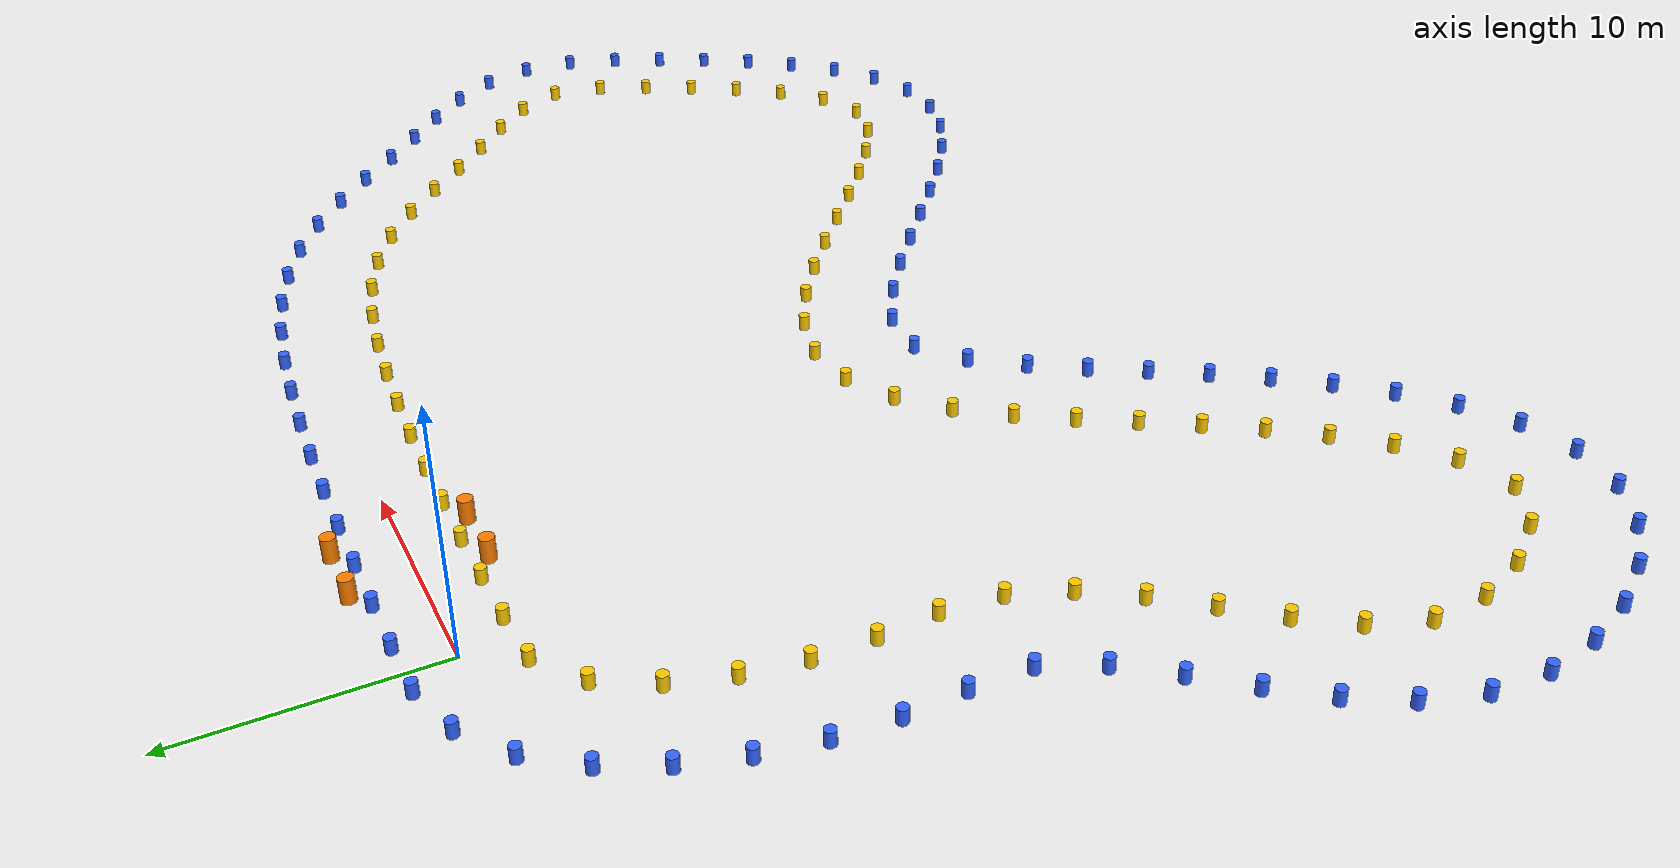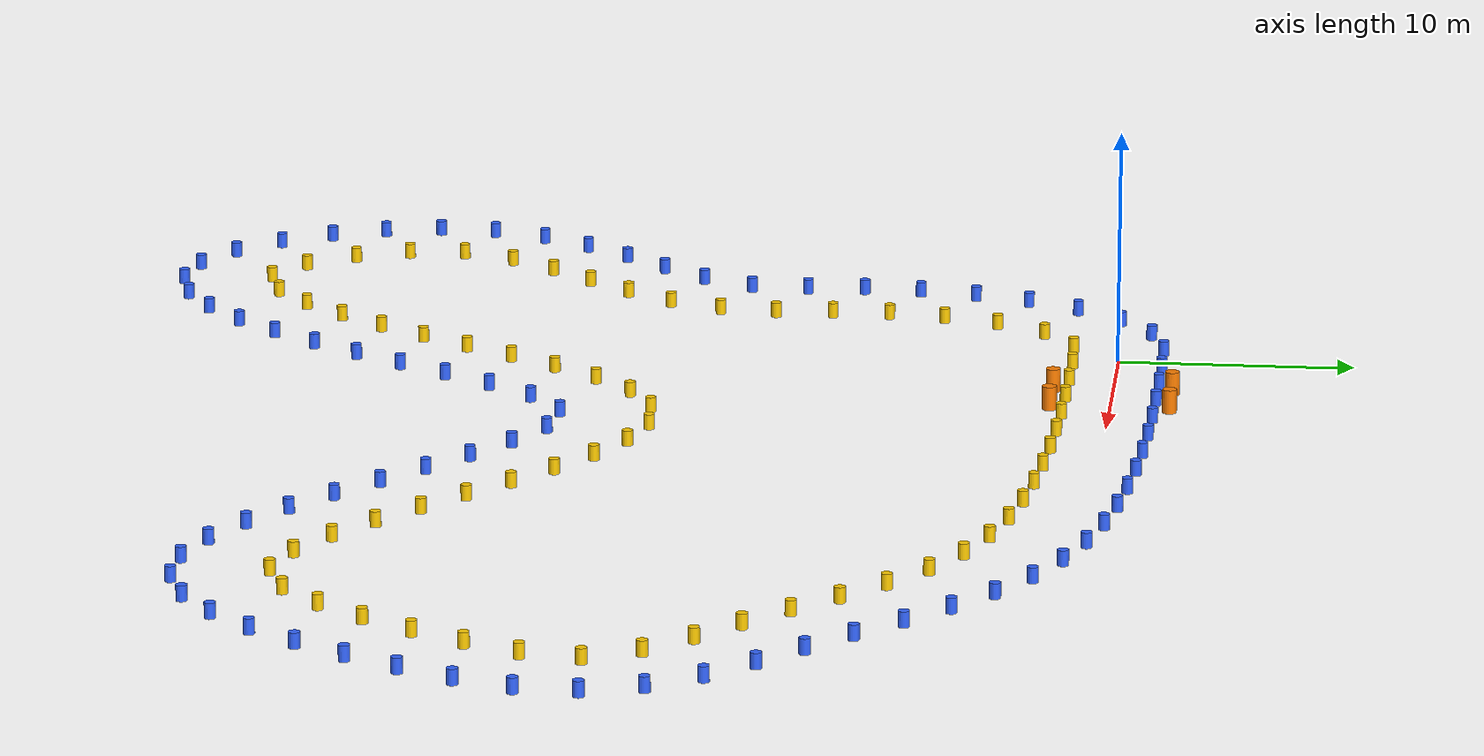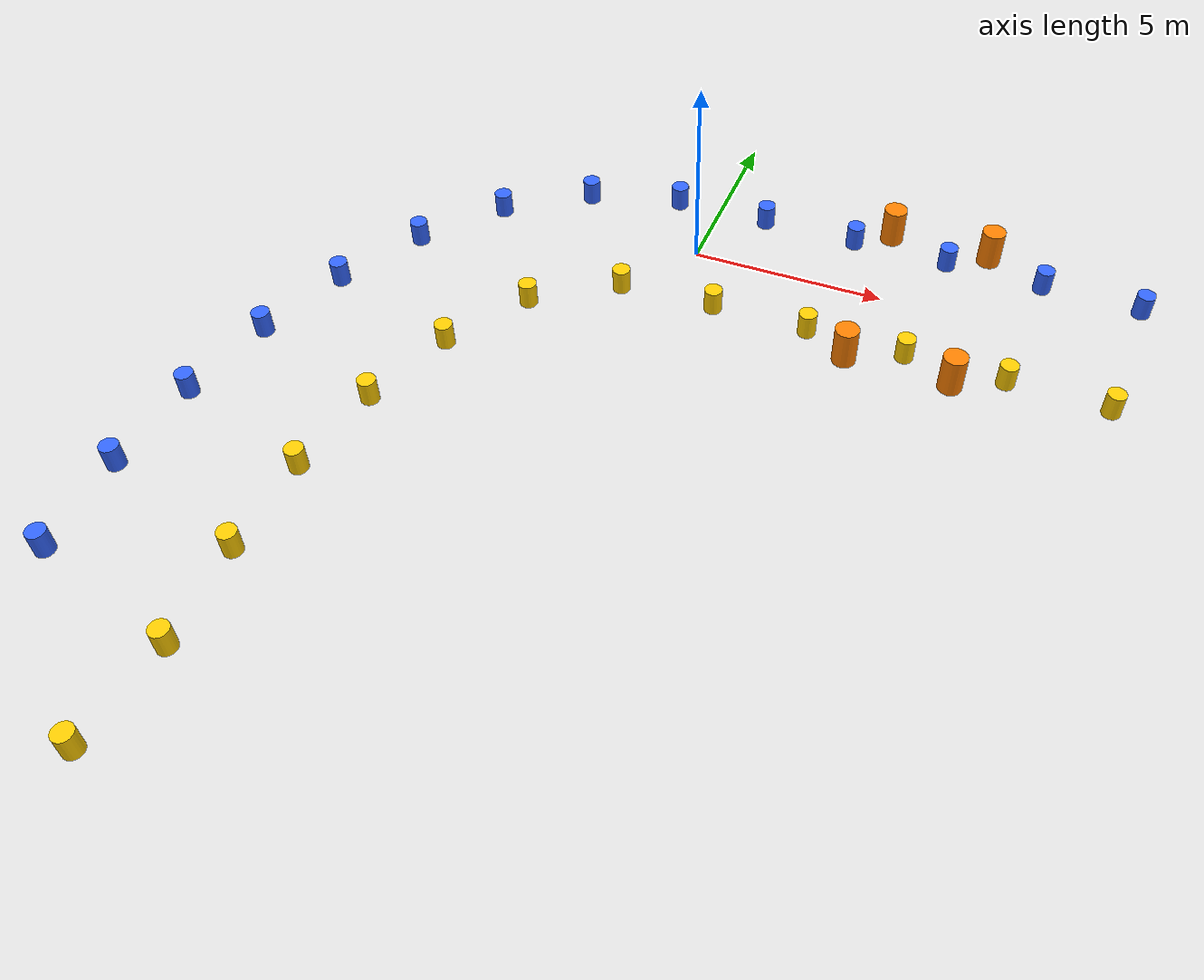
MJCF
<?xml version="1.0" ?>
<mujoco model="random_track">
  <compiler angle="radian" coordinate="local" autolimits="true"/>
  <default>
    <default class="cone">
      <joint type="free" damping="0.1" frictionloss="0.05"/>
      <geom condim="4" friction="0.5 0.005 0.0001" solref="0.02 1.0" solimp="0.99 0.99 0.001"/>
    </default>
  </default>
  <asset>
    <material name="blue_cone" rgba="0.2 0.4 1.0 1.0" specular="0.5" shininess="0.2"/>
    <material name="yellow_cone" rgba="1.0 0.8 0.0 1.0" specular="0.5" shininess="0.2"/>
    <material name="orange_cone" rgba="1.0 0.5 0.0 1.0" specular="0.5" shininess="0.2"/>
  </asset>
  <worldbody>
    <body name="cone_left_0000" pos="18.735603898344248 1.3534401294059109 0.325">
      <joint name="cone_left_joint_0000" type="free" damping="0.1" frictionloss="0.05"/>
      <geom name="cone_left_vis_0000" type="cylinder" size="0.228 0.325" material="blue_cone" mass="1.0" density="100" condim="4" friction="0.5 0.005 0.0001" solref="0.02 1.0" solimp="0.99 0.99 0.001"/>
    </body>
    <body name="cone_left_0001" pos="21.20881553278776 1.075751233805832 0.325">
      <joint name="cone_left_joint_0001" type="free" damping="0.1" frictionloss="0.05"/>
      <geom name="cone_left_vis_0001" type="cylinder" size="0.228 0.325" material="blue_cone" mass="1.0" density="100" condim="4" friction="0.5 0.005 0.0001" solref="0.02 1.0" solimp="0.99 0.99 0.001"/>
    </body>
    <body name="cone_left_0002" pos="23.66638857630077 0.6832571295681049 0.325">
      <joint name="cone_left_joint_0002" type="free" damping="0.1" frictionloss="0.05"/>
      <geom name="cone_left_vis_0002" type="cylinder" size="0.228 0.325" material="blue_cone" mass="1.0" density="100" condim="4" friction="0.5 0.005 0.0001" solref="0.02 1.0" solimp="0.99 0.99 0.001"/>
    </body>
    <body name="cone_left_0003" pos="26.091472914993638 0.12546506664108392 0.325">
      <joint name="cone_left_joint_0003" type="free" damping="0.1" frictionloss="0.05"/>
      <geom name="cone_left_vis_0003" type="cylinder" size="0.228 0.325" material="blue_cone" mass="1.0" density="100" condim="4" friction="0.5 0.005 0.0001" solref="0.02 1.0" solimp="0.99 0.99 0.001"/>
    </body>
    <body name="cone_left_0004" pos="28.45613990898478 -0.6480907303542125 0.325">
      <joint name="cone_left_joint_0004" type="free" damping="0.1" frictionloss="0.05"/>
      <geom name="cone_left_vis_0004" type="cylinder" size="0.228 0.325" material="blue_cone" mass="1.0" density="100" condim="4" friction="0.5 0.005 0.0001" solref="0.02 1.0" solimp="0.99 0.99 0.001"/>
    </body>
    <body name="cone_left_0005" pos="30.71805762903768 -1.683067530949259 0.325">
      <joint name="cone_left_joint_0005" type="free" damping="0.1" frictionloss="0.05"/>
      <geom name="cone_left_vis_0005" type="cylinder" size="0.228 0.325" material="blue_cone" mass="1.0" density="100" condim="4" friction="0.5 0.005 0.0001" solref="0.02 1.0" solimp="0.99 0.99 0.001"/>
    </body>
    <body name="cone_left_0006" pos="32.82934699698564 -2.9983166853792653 0.325">
      <joint name="cone_left_joint_0006" type="free" damping="0.1" frictionloss="0.05"/>
      <geom name="cone_left_vis_0006" type="cylinder" size="0.228 0.325" material="blue_cone" mass="1.0" density="100" condim="4" friction="0.5 0.005 0.0001" solref="0.02 1.0" solimp="0.99 0.99 0.001"/>
    </body>
    <body name="cone_left_0007" pos="34.788584654144195 -4.532110984993523 0.325">
      <joint name="cone_left_joint_0007" type="free" damping="0.1" frictionloss="0.05"/>
      <geom name="cone_left_vis_0007" type="cylinder" size="0.228 0.325" material="blue_cone" mass="1.0" density="100" condim="4" friction="0.5 0.005 0.0001" solref="0.02 1.0" solimp="0.99 0.99 0.001"/>
    </body>
    <body name="cone_left_0008" pos="36.6285604219892 -6.2078520269610635 0.325">
      <joint name="cone_left_joint_0008" type="free" damping="0.1" frictionloss="0.05"/>
      <geom name="cone_left_vis_0008" type="cylinder" size="0.228 0.325" material="blue_cone" mass="1.0" density="100" condim="4" friction="0.5 0.005 0.0001" solref="0.02 1.0" solimp="0.99 0.99 0.001"/>
    </body>
    <body name="cone_left_0009" pos="38.40050200234917 -7.955830560616121 0.325">
      <joint name="cone_left_joint_0009" type="free" damping="0.1" frictionloss="0.05"/>
      <geom name="cone_left_vis_0009" type="cylinder" size="0.228 0.325" material="blue_cone" mass="1.0" density="100" condim="4" friction="0.5 0.005 0.0001" solref="0.02 1.0" solimp="0.99 0.99 0.001"/>
    </body>
    <body name="cone_left_0010" pos="40.23340110209543 -9.639229165532711 0.325">
      <joint name="cone_left_joint_0010" type="free" damping="0.1" frictionloss="0.05"/>
      <geom name="cone_left_vis_0010" type="cylinder" size="0.228 0.325" material="blue_cone" mass="1.0" density="100" condim="4" friction="0.5 0.005 0.0001" solref="0.02 1.0" solimp="0.99 0.99 0.001"/>
    </body>
    <body name="cone_left_0011" pos="42.09156334778955 -11.295158669617805 0.325">
      <joint name="cone_left_joint_0011" type="free" damping="0.1" frictionloss="0.05"/>
      <geom name="cone_left_vis_0011" type="cylinder" size="0.228 0.325" material="blue_cone" mass="1.0" density="100" condim="4" friction="0.5 0.005 0.0001" solref="0.02 1.0" solimp="0.99 0.99 0.001"/>
    </body>
    <body name="cone_left_0012" pos="43.825645655811094 -13.078805977486354 0.325">
      <joint name="cone_left_joint_0012" type="free" damping="0.1" frictionloss="0.05"/>
      <geom name="cone_left_vis_0012" type="cylinder" size="0.228 0.325" material="blue_cone" mass="1.0" density="100" condim="4" friction="0.5 0.005 0.0001" solref="0.02 1.0" solimp="0.99 0.99 0.001"/>
    </body>
    <body name="cone_left_0013" pos="45.23056420997621 -15.12677592381479 0.325">
      <joint name="cone_left_joint_0013" type="free" damping="0.1" frictionloss="0.05"/>
      <geom name="cone_left_vis_0013" type="cylinder" size="0.228 0.325" material="blue_cone" mass="1.0" density="100" condim="4" friction="0.5 0.005 0.0001" solref="0.02 1.0" solimp="0.99 0.99 0.001"/>
    </body>
    <body name="cone_left_0014" pos="45.973349480225366 -17.488325787896855 0.325">
      <joint name="cone_left_joint_0014" type="free" damping="0.1" frictionloss="0.05"/>
      <geom name="cone_left_vis_0014" type="cylinder" size="0.228 0.325" material="blue_cone" mass="1.0" density="100" condim="4" friction="0.5 0.005 0.0001" solref="0.02 1.0" solimp="0.99 0.99 0.001"/>
    </body>
    <body name="cone_left_0015" pos="45.819990619044646 -19.961005852247595 0.325">
      <joint name="cone_left_joint_0015" type="free" damping="0.1" frictionloss="0.05"/>
      <geom name="cone_left_vis_0015" type="cylinder" size="0.228 0.325" material="blue_cone" mass="1.0" density="100" condim="4" friction="0.5 0.005 0.0001" solref="0.02 1.0" solimp="0.99 0.99 0.001"/>
    </body>
    <body name="cone_left_0016" pos="45.03142776061973 -22.31786590686316 0.325">
      <joint name="cone_left_joint_0016" type="free" damping="0.1" frictionloss="0.05"/>
      <geom name="cone_left_vis_0016" type="cylinder" size="0.228 0.325" material="blue_cone" mass="1.0" density="100" condim="4" friction="0.5 0.005 0.0001" solref="0.02 1.0" solimp="0.99 0.99 0.001"/>
    </body>
    <body name="cone_left_0017" pos="43.93871869591369 -24.553500306318497 0.325">
      <joint name="cone_left_joint_0017" type="free" damping="0.1" frictionloss="0.05"/>
      <geom name="cone_left_vis_0017" type="cylinder" size="0.228 0.325" material="blue_cone" mass="1.0" density="100" condim="4" friction="0.5 0.005 0.0001" solref="0.02 1.0" solimp="0.99 0.99 0.001"/>
    </body>
    <body name="cone_left_0018" pos="42.72094846563454 -26.724006773987753 0.325">
      <joint name="cone_left_joint_0018" type="free" damping="0.1" frictionloss="0.05"/>
      <geom name="cone_left_vis_0018" type="cylinder" size="0.228 0.325" material="blue_cone" mass="1.0" density="100" condim="4" friction="0.5 0.005 0.0001" solref="0.02 1.0" solimp="0.99 0.99 0.001"/>
    </body>
    <body name="cone_left_0019" pos="41.378135225374066 -28.819202770922274 0.325">
      <joint name="cone_left_joint_0019" type="free" damping="0.1" frictionloss="0.05"/>
      <geom name="cone_left_vis_0019" type="cylinder" size="0.228 0.325" material="blue_cone" mass="1.0" density="100" condim="4" friction="0.5 0.005 0.0001" solref="0.02 1.0" solimp="0.99 0.99 0.001"/>
    </body>
    <body name="cone_left_0020" pos="39.87025219693152 -30.79831306617733 0.325">
      <joint name="cone_left_joint_0020" type="free" damping="0.1" frictionloss="0.05"/>
      <geom name="cone_left_vis_0020" type="cylinder" size="0.228 0.325" material="blue_cone" mass="1.0" density="100" condim="4" friction="0.5 0.005 0.0001" solref="0.02 1.0" solimp="0.99 0.99 0.001"/>
    </body>
    <body name="cone_left_0021" pos="38.14054851713214 -32.58515484128095 0.325">
      <joint name="cone_left_joint_0021" type="free" damping="0.1" frictionloss="0.05"/>
      <geom name="cone_left_vis_0021" type="cylinder" size="0.228 0.325" material="blue_cone" mass="1.0" density="100" condim="4" friction="0.5 0.005 0.0001" solref="0.02 1.0" solimp="0.99 0.99 0.001"/>
    </body>
    <body name="cone_left_0022" pos="36.12053125142633 -34.030592549804325 0.325">
      <joint name="cone_left_joint_0022" type="free" damping="0.1" frictionloss="0.05"/>
      <geom name="cone_left_vis_0022" type="cylinder" size="0.228 0.325" material="blue_cone" mass="1.0" density="100" condim="4" friction="0.5 0.005 0.0001" solref="0.02 1.0" solimp="0.99 0.99 0.001"/>
    </body>
    <body name="cone_left_0023" pos="33.790991201508604 -34.87558872830678 0.325">
      <joint name="cone_left_joint_0023" type="free" damping="0.1" frictionloss="0.05"/>
      <geom name="cone_left_vis_0023" type="cylinder" size="0.228 0.325" material="blue_cone" mass="1.0" density="100" condim="4" friction="0.5 0.005 0.0001" solref="0.02 1.0" solimp="0.99 0.99 0.001"/>
    </body>
    <body name="cone_left_0024" pos="31.313353581662934 -34.89782942598448 0.325">
      <joint name="cone_left_joint_0024" type="free" damping="0.1" frictionloss="0.05"/>
      <geom name="cone_left_vis_0024" type="cylinder" size="0.228 0.325" material="blue_cone" mass="1.0" density="100" condim="4" friction="0.5 0.005 0.0001" solref="0.02 1.0" solimp="0.99 0.99 0.001"/>
    </body>
    <body name="cone_left_0025" pos="28.925618831075543 -34.21629645205822 0.325">
      <joint name="cone_left_joint_0025" type="free" damping="0.1" frictionloss="0.05"/>
      <geom name="cone_left_vis_0025" type="cylinder" size="0.228 0.325" material="blue_cone" mass="1.0" density="100" condim="4" friction="0.5 0.005 0.0001" solref="0.02 1.0" solimp="0.99 0.99 0.001"/>
    </body>
    <body name="cone_left_0026" pos="26.709214001039566 -33.08870634202185 0.325">
      <joint name="cone_left_joint_0026" type="free" damping="0.1" frictionloss="0.05"/>
      <geom name="cone_left_vis_0026" type="cylinder" size="0.228 0.325" material="blue_cone" mass="1.0" density="100" condim="4" friction="0.5 0.005 0.0001" solref="0.02 1.0" solimp="0.99 0.99 0.001"/>
    </body>
    <body name="cone_left_0027" pos="24.636528422086407 -31.711951005268276 0.325">
      <joint name="cone_left_joint_0027" type="free" damping="0.1" frictionloss="0.05"/>
      <geom name="cone_left_vis_0027" type="cylinder" size="0.228 0.325" material="blue_cone" mass="1.0" density="100" condim="4" friction="0.5 0.005 0.0001" solref="0.02 1.0" solimp="0.99 0.99 0.001"/>
    </body>
    <body name="cone_left_0028" pos="22.657508908240303 -30.20272611910444 0.325">
      <joint name="cone_left_joint_0028" type="free" damping="0.1" frictionloss="0.05"/>
      <geom name="cone_left_vis_0028" type="cylinder" size="0.228 0.325" material="blue_cone" mass="1.0" density="100" condim="4" friction="0.5 0.005 0.0001" solref="0.02 1.0" solimp="0.99 0.99 0.001"/>
    </body>
    <body name="cone_left_0029" pos="20.72651251477038 -28.632222342780537 0.325">
      <joint name="cone_left_joint_0029" type="free" damping="0.1" frictionloss="0.05"/>
      <geom name="cone_left_vis_0029" type="cylinder" size="0.228 0.325" material="blue_cone" mass="1.0" density="100" condim="4" friction="0.5 0.005 0.0001" solref="0.02 1.0" solimp="0.99 0.99 0.001"/>
    </body>
    <body name="cone_left_0030" pos="18.803795352925476 -27.05155057156462 0.325">
      <joint name="cone_left_joint_0030" type="free" damping="0.1" frictionloss="0.05"/>
      <geom name="cone_left_vis_0030" type="cylinder" size="0.228 0.325" material="blue_cone" mass="1.0" density="100" condim="4" friction="0.5 0.005 0.0001" solref="0.02 1.0" solimp="0.99 0.99 0.001"/>
    </body>
    <body name="cone_left_0031" pos="16.851254808244697 -25.50803903492192 0.325">
      <joint name="cone_left_joint_0031" type="free" damping="0.1" frictionloss="0.05"/>
      <geom name="cone_left_vis_0031" type="cylinder" size="0.228 0.325" material="blue_cone" mass="1.0" density="100" condim="4" friction="0.5 0.005 0.0001" solref="0.02 1.0" solimp="0.99 0.99 0.001"/>
    </body>
    <body name="cone_left_0032" pos="14.820232412918585 -24.07026119746355 0.325">
      <joint name="cone_left_joint_0032" type="free" damping="0.1" frictionloss="0.05"/>
      <geom name="cone_left_vis_0032" type="cylinder" size="0.228 0.325" material="blue_cone" mass="1.0" density="100" condim="4" friction="0.5 0.005 0.0001" solref="0.02 1.0" solimp="0.99 0.99 0.001"/>
    </body>
    <body name="cone_left_0033" pos="12.630187096541949 -22.89513487501243 0.325">
      <joint name="cone_left_joint_0033" type="free" damping="0.1" frictionloss="0.05"/>
      <geom name="cone_left_vis_0033" type="cylinder" size="0.228 0.325" material="blue_cone" mass="1.0" density="100" condim="4" friction="0.5 0.005 0.0001" solref="0.02 1.0" solimp="0.99 0.99 0.001"/>
    </body>
    <body name="cone_left_0034" pos="10.21118905734819 -22.666724567892274 0.325">
      <joint name="cone_left_joint_0034" type="free" damping="0.1" frictionloss="0.05"/>
      <geom name="cone_left_vis_0034" type="cylinder" size="0.228 0.325" material="blue_cone" mass="1.0" density="100" condim="4" friction="0.5 0.005 0.0001" solref="0.02 1.0" solimp="0.99 0.99 0.001"/>
    </body>
    <body name="cone_left_0035" pos="8.232624341897456 -24.140944796948176 0.325">
      <joint name="cone_left_joint_0035" type="free" damping="0.1" frictionloss="0.05"/>
      <geom name="cone_left_vis_0035" type="cylinder" size="0.228 0.325" material="blue_cone" mass="1.0" density="100" condim="4" friction="0.5 0.005 0.0001" solref="0.02 1.0" solimp="0.99 0.99 0.001"/>
    </body>
    <body name="cone_left_0036" pos="6.682245354658317 -26.085811425676354 0.325">
      <joint name="cone_left_joint_0036" type="free" damping="0.1" frictionloss="0.05"/>
      <geom name="cone_left_vis_0036" type="cylinder" size="0.228 0.325" material="blue_cone" mass="1.0" density="100" condim="4" friction="0.5 0.005 0.0001" solref="0.02 1.0" solimp="0.99 0.99 0.001"/>
    </body>
    <body name="cone_left_0037" pos="5.298764833972406 -28.154691351752504 0.325">
      <joint name="cone_left_joint_0037" type="free" damping="0.1" frictionloss="0.05"/>
      <geom name="cone_left_vis_0037" type="cylinder" size="0.228 0.325" material="blue_cone" mass="1.0" density="100" condim="4" friction="0.5 0.005 0.0001" solref="0.02 1.0" solimp="0.99 0.99 0.001"/>
    </body>
    <body name="cone_left_0038" pos="3.964075616647918 -30.255638588292243 0.325">
      <joint name="cone_left_joint_0038" type="free" damping="0.1" frictionloss="0.05"/>
      <geom name="cone_left_vis_0038" type="cylinder" size="0.228 0.325" material="blue_cone" mass="1.0" density="100" condim="4" friction="0.5 0.005 0.0001" solref="0.02 1.0" solimp="0.99 0.99 0.001"/>
    </body>
    <body name="cone_left_0039" pos="2.6074234740704156 -32.34240057953323 0.325">
      <joint name="cone_left_joint_0039" type="free" damping="0.1" frictionloss="0.05"/>
      <geom name="cone_left_vis_0039" type="cylinder" size="0.228 0.325" material="blue_cone" mass="1.0" density="100" condim="4" friction="0.5 0.005 0.0001" solref="0.02 1.0" solimp="0.99 0.99 0.001"/>
    </body>
    <body name="cone_left_0040" pos="1.1773635075343805 -34.379374438050746 0.325">
      <joint name="cone_left_joint_0040" type="free" damping="0.1" frictionloss="0.05"/>
      <geom name="cone_left_vis_0040" type="cylinder" size="0.228 0.325" material="blue_cone" mass="1.0" density="100" condim="4" friction="0.5 0.005 0.0001" solref="0.02 1.0" solimp="0.99 0.99 0.001"/>
    </body>
    <body name="cone_left_0041" pos="-0.35969778312541223 -36.336615007859734 0.325">
      <joint name="cone_left_joint_0041" type="free" damping="0.1" frictionloss="0.05"/>
      <geom name="cone_left_vis_0041" type="cylinder" size="0.228 0.325" material="blue_cone" mass="1.0" density="100" condim="4" friction="0.5 0.005 0.0001" solref="0.02 1.0" solimp="0.99 0.99 0.001"/>
    </body>
    <body name="cone_left_0042" pos="-2.0413586487043034 -38.17047563290548 0.325">
      <joint name="cone_left_joint_0042" type="free" damping="0.1" frictionloss="0.05"/>
      <geom name="cone_left_vis_0042" type="cylinder" size="0.228 0.325" material="blue_cone" mass="1.0" density="100" condim="4" friction="0.5 0.005 0.0001" solref="0.02 1.0" solimp="0.99 0.99 0.001"/>
    </body>
    <body name="cone_left_0043" pos="-3.9202785964108315 -39.799790088217705 0.325">
      <joint name="cone_left_joint_0043" type="free" damping="0.1" frictionloss="0.05"/>
      <geom name="cone_left_vis_0043" type="cylinder" size="0.228 0.325" material="blue_cone" mass="1.0" density="100" condim="4" friction="0.5 0.005 0.0001" solref="0.02 1.0" solimp="0.99 0.99 0.001"/>
    </body>
    <body name="cone_left_0044" pos="-6.05836272324791 -41.06369342020342 0.325">
      <joint name="cone_left_joint_0044" type="free" damping="0.1" frictionloss="0.05"/>
      <geom name="cone_left_vis_0044" type="cylinder" size="0.228 0.325" material="blue_cone" mass="1.0" density="100" condim="4" friction="0.5 0.005 0.0001" solref="0.02 1.0" solimp="0.99 0.99 0.001"/>
    </body>
    <body name="cone_left_0045" pos="-8.457985698213378 -41.67743488955291 0.325">
      <joint name="cone_left_joint_0045" type="free" damping="0.1" frictionloss="0.05"/>
      <geom name="cone_left_vis_0045" type="cylinder" size="0.228 0.325" material="blue_cone" mass="1.0" density="100" condim="4" friction="0.5 0.005 0.0001" solref="0.02 1.0" solimp="0.99 0.99 0.001"/>
    </body>
    <body name="cone_left_0046" pos="-10.906927340747735 -41.34523262715223 0.325">
      <joint name="cone_left_joint_0046" type="free" damping="0.1" frictionloss="0.05"/>
      <geom name="cone_left_vis_0046" type="cylinder" size="0.228 0.325" material="blue_cone" mass="1.0" density="100" condim="4" friction="0.5 0.005 0.0001" solref="0.02 1.0" solimp="0.99 0.99 0.001"/>
    </body>
    <body name="cone_left_0047" pos="-13.058587763234172 -40.11685307893198 0.325">
      <joint name="cone_left_joint_0047" type="free" damping="0.1" frictionloss="0.05"/>
      <geom name="cone_left_vis_0047" type="cylinder" size="0.228 0.325" material="blue_cone" mass="1.0" density="100" condim="4" friction="0.5 0.005 0.0001" solref="0.02 1.0" solimp="0.99 0.99 0.001"/>
    </body>
    <body name="cone_left_0048" pos="-14.798061453703312 -38.344177207554324 0.325">
      <joint name="cone_left_joint_0048" type="free" damping="0.1" frictionloss="0.05"/>
      <geom name="cone_left_vis_0048" type="cylinder" size="0.228 0.325" material="blue_cone" mass="1.0" density="100" condim="4" friction="0.5 0.005 0.0001" solref="0.02 1.0" solimp="0.99 0.99 0.001"/>
    </body>
    <body name="cone_left_0049" pos="-16.144209137734393 -36.25481038800271 0.325">
      <joint name="cone_left_joint_0049" type="free" damping="0.1" frictionloss="0.05"/>
      <geom name="cone_left_vis_0049" type="cylinder" size="0.228 0.325" material="blue_cone" mass="1.0" density="100" condim="4" friction="0.5 0.005 0.0001" solref="0.02 1.0" solimp="0.99 0.99 0.001"/>
    </body>
    <body name="cone_left_0050" pos="-17.091549773912064 -33.956850889269944 0.325">
      <joint name="cone_left_joint_0050" type="free" damping="0.1" frictionloss="0.05"/>
      <geom name="cone_left_vis_0050" type="cylinder" size="0.228 0.325" material="blue_cone" mass="1.0" density="100" condim="4" friction="0.5 0.005 0.0001" solref="0.02 1.0" solimp="0.99 0.99 0.001"/>
    </body>
    <body name="cone_left_0051" pos="-17.572095374226016 -31.519516893714894 0.325">
      <joint name="cone_left_joint_0051" type="free" damping="0.1" frictionloss="0.05"/>
      <geom name="cone_left_vis_0051" type="cylinder" size="0.228 0.325" material="blue_cone" mass="1.0" density="100" condim="4" friction="0.5 0.005 0.0001" solref="0.02 1.0" solimp="0.99 0.99 0.001"/>
    </body>
    <body name="cone_left_0052" pos="-17.445534432611403 -29.04168123293708 0.325">
      <joint name="cone_left_joint_0052" type="free" damping="0.1" frictionloss="0.05"/>
      <geom name="cone_left_vis_0052" type="cylinder" size="0.228 0.325" material="blue_cone" mass="1.0" density="100" condim="4" friction="0.5 0.005 0.0001" solref="0.02 1.0" solimp="0.99 0.99 0.001"/>
    </body>
    <body name="cone_left_0053" pos="-16.650485296717328 -26.690225193062105 0.325">
      <joint name="cone_left_joint_0053" type="free" damping="0.1" frictionloss="0.05"/>
      <geom name="cone_left_vis_0053" type="cylinder" size="0.228 0.325" material="blue_cone" mass="1.0" density="100" condim="4" friction="0.5 0.005 0.0001" solref="0.02 1.0" solimp="0.99 0.99 0.001"/>
    </body>
    <body name="cone_left_0054" pos="-15.364544056926334 -24.562872377839554 0.325">
      <joint name="cone_left_joint_0054" type="free" damping="0.1" frictionloss="0.05"/>
      <geom name="cone_left_vis_0054" type="cylinder" size="0.228 0.325" material="blue_cone" mass="1.0" density="100" condim="4" friction="0.5 0.005 0.0001" solref="0.02 1.0" solimp="0.99 0.99 0.001"/>
    </body>
    <body name="cone_left_0055" pos="-13.806499833459768 -22.622860352751488 0.325">
      <joint name="cone_left_joint_0055" type="free" damping="0.1" frictionloss="0.05"/>
      <geom name="cone_left_vis_0055" type="cylinder" size="0.228 0.325" material="blue_cone" mass="1.0" density="100" condim="4" friction="0.5 0.005 0.0001" solref="0.02 1.0" solimp="0.99 0.99 0.001"/>
    </body>
    <body name="cone_left_0056" pos="-12.15538066245653 -20.760306432257707 0.325">
      <joint name="cone_left_joint_0056" type="free" damping="0.1" frictionloss="0.05"/>
      <geom name="cone_left_vis_0056" type="cylinder" size="0.228 0.325" material="blue_cone" mass="1.0" density="100" condim="4" friction="0.5 0.005 0.0001" solref="0.02 1.0" solimp="0.99 0.99 0.001"/>
    </body>
    <body name="cone_left_0057" pos="-10.592173663566115 -18.824928268778365 0.325">
      <joint name="cone_left_joint_0057" type="free" damping="0.1" frictionloss="0.05"/>
      <geom name="cone_left_vis_0057" type="cylinder" size="0.228 0.325" material="blue_cone" mass="1.0" density="100" condim="4" friction="0.5 0.005 0.0001" solref="0.02 1.0" solimp="0.99 0.99 0.001"/>
    </body>
    <body name="cone_left_0058" pos="-9.49602145595486 -16.606573186421187 0.325">
      <joint name="cone_left_joint_0058" type="free" damping="0.1" frictionloss="0.05"/>
      <geom name="cone_left_vis_0058" type="cylinder" size="0.228 0.325" material="blue_cone" mass="1.0" density="100" condim="4" friction="0.5 0.005 0.0001" solref="0.02 1.0" solimp="0.99 0.99 0.001"/>
    </body>
    <body name="cone_left_0059" pos="-9.465758770031314 -14.128699680975544 0.325">
      <joint name="cone_left_joint_0059" type="free" damping="0.1" frictionloss="0.05"/>
      <geom name="cone_left_vis_0059" type="cylinder" size="0.228 0.325" material="blue_cone" mass="1.0" density="100" condim="4" friction="0.5 0.005 0.0001" solref="0.02 1.0" solimp="0.99 0.99 0.001"/>
    </body>
    <body name="cone_left_0060" pos="-9.60891504440859 -11.644672995995805 0.325">
      <joint name="cone_left_joint_0060" type="free" damping="0.1" frictionloss="0.05"/>
      <geom name="cone_left_vis_0060" type="cylinder" size="0.228 0.325" material="blue_cone" mass="1.0" density="100" condim="4" friction="0.5 0.005 0.0001" solref="0.02 1.0" solimp="0.99 0.99 0.001"/>
    </body>
    <body name="cone_left_0061" pos="-9.457244925288698 -9.161822858960264 0.325">
      <joint name="cone_left_joint_0061" type="free" damping="0.1" frictionloss="0.05"/>
      <geom name="cone_left_vis_0061" type="cylinder" size="0.228 0.325" material="blue_cone" mass="1.0" density="100" condim="4" friction="0.5 0.005 0.0001" solref="0.02 1.0" solimp="0.99 0.99 0.001"/>
    </body>
    <body name="cone_left_0062" pos="-9.007468472222044 -6.715286866091233 0.325">
      <joint name="cone_left_joint_0062" type="free" damping="0.1" frictionloss="0.05"/>
      <geom name="cone_left_vis_0062" type="cylinder" size="0.228 0.325" material="blue_cone" mass="1.0" density="100" condim="4" friction="0.5 0.005 0.0001" solref="0.02 1.0" solimp="0.99 0.99 0.001"/>
    </body>
    <body name="cone_left_0063" pos="-8.248999197444135 -4.346699067983124 0.325">
      <joint name="cone_left_joint_0063" type="free" damping="0.1" frictionloss="0.05"/>
      <geom name="cone_left_vis_0063" type="cylinder" size="0.228 0.325" material="blue_cone" mass="1.0" density="100" condim="4" friction="0.5 0.005 0.0001" solref="0.02 1.0" solimp="0.99 0.99 0.001"/>
    </body>
    <body name="cone_left_0064" pos="-7.133269818406305 -2.125367180045913 0.325">
      <joint name="cone_left_joint_0064" type="free" damping="0.1" frictionloss="0.05"/>
      <geom name="cone_left_vis_0064" type="cylinder" size="0.228 0.325" material="blue_cone" mass="1.0" density="100" condim="4" friction="0.5 0.005 0.0001" solref="0.02 1.0" solimp="0.99 0.99 0.001"/>
    </body>
    <body name="cone_left_0065" pos="-5.583018186857068 -0.18597249584975373 0.325">
      <joint name="cone_left_joint_0065" type="free" damping="0.1" frictionloss="0.05"/>
      <geom name="cone_left_vis_0065" type="cylinder" size="0.228 0.325" material="blue_cone" mass="1.0" density="100" condim="4" friction="0.5 0.005 0.0001" solref="0.02 1.0" solimp="0.99 0.99 0.001"/>
    </body>
    <body name="cone_left_0066" pos="-3.5534543741740734 1.2356496223189168 0.325">
      <joint name="cone_left_joint_0066" type="free" damping="0.1" frictionloss="0.05"/>
      <geom name="cone_left_vis_0066" type="cylinder" size="0.228 0.325" material="blue_cone" mass="1.0" density="100" condim="4" friction="0.5 0.005 0.0001" solref="0.02 1.0" solimp="0.99 0.99 0.001"/>
    </body>
    <body name="cone_left_0067" pos="-1.1598311229685763 1.865013850086683 0.325">
      <joint name="cone_left_joint_0067" type="free" damping="0.1" frictionloss="0.05"/>
      <geom name="cone_left_vis_0067" type="cylinder" size="0.228 0.325" material="blue_cone" mass="1.0" density="100" condim="4" friction="0.5 0.005 0.0001" solref="0.02 1.0" solimp="0.99 0.99 0.001"/>
    </body>
    <body name="cone_left_0068" pos="1.3283953976827831 1.9028437989196192 0.325">
      <joint name="cone_left_joint_0068" type="free" damping="0.1" frictionloss="0.05"/>
      <geom name="cone_left_vis_0068" type="cylinder" size="0.228 0.325" material="blue_cone" mass="1.0" density="100" condim="4" friction="0.5 0.005 0.0001" solref="0.02 1.0" solimp="0.99 0.99 0.001"/>
    </body>
    <body name="cone_left_0069" pos="3.8174474282705972 1.9060010252401298 0.325">
      <joint name="cone_left_joint_0069" type="free" damping="0.1" frictionloss="0.05"/>
      <geom name="cone_left_vis_0069" type="cylinder" size="0.228 0.325" material="blue_cone" mass="1.0" density="100" condim="4" friction="0.5 0.005 0.0001" solref="0.02 1.0" solimp="0.99 0.99 0.001"/>
    </body>
    <body name="cone_left_0070" pos="6.306485265127193 1.8981101267881826 0.325">
      <joint name="cone_left_joint_0070" type="free" damping="0.1" frictionloss="0.05"/>
      <geom name="cone_left_vis_0070" type="cylinder" size="0.228 0.325" material="blue_cone" mass="1.0" density="100" condim="4" friction="0.5 0.005 0.0001" solref="0.02 1.0" solimp="0.99 0.99 0.001"/>
    </body>
    <body name="cone_left_0071" pos="8.79536089938119 1.869221664674555 0.325">
      <joint name="cone_left_joint_0071" type="free" damping="0.1" frictionloss="0.05"/>
      <geom name="cone_left_vis_0071" type="cylinder" size="0.228 0.325" material="blue_cone" mass="1.0" density="100" condim="4" friction="0.5 0.005 0.0001" solref="0.02 1.0" solimp="0.99 0.99 0.001"/>
    </body>
    <body name="cone_left_0072" pos="11.283677172578145 1.8094843453265668 0.325">
      <joint name="cone_left_joint_0072" type="free" damping="0.1" frictionloss="0.05"/>
      <geom name="cone_left_vis_0072" type="cylinder" size="0.228 0.325" material="blue_cone" mass="1.0" density="100" condim="4" friction="0.5 0.005 0.0001" solref="0.02 1.0" solimp="0.99 0.99 0.001"/>
    </body>
    <body name="cone_left_0073" pos="13.770683111950664 1.7093587045935124 0.325">
      <joint name="cone_left_joint_0073" type="free" damping="0.1" frictionloss="0.05"/>
      <geom name="cone_left_vis_0073" type="cylinder" size="0.228 0.325" material="blue_cone" mass="1.0" density="100" condim="4" friction="0.5 0.005 0.0001" solref="0.02 1.0" solimp="0.99 0.99 0.001"/>
    </body>
    <body name="cone_left_0074" pos="16.255206679816393 1.5600402559914528 0.325">
      <joint name="cone_left_joint_0074" type="free" damping="0.1" frictionloss="0.05"/>
      <geom name="cone_left_vis_0074" type="cylinder" size="0.228 0.325" material="blue_cone" mass="1.0" density="100" condim="4" friction="0.5 0.005 0.0001" solref="0.02 1.0" solimp="0.99 0.99 0.001"/>
    </body>
    <body name="cone_right_0000" pos="18.371490192534385 -2.428910142609894 0.325">
      <joint name="cone_right_joint_0000" type="free" damping="0.1" frictionloss="0.05"/>
      <geom name="cone_right_vis_0000" type="cylinder" size="0.228 0.325" material="yellow_cone" mass="1.0" condim="4" friction="0.5 0.005 0.0001"/>
    </body>
    <body name="cone_right_0001" pos="20.82237965568573 -2.706441711323123 0.325">
      <joint name="cone_right_joint_0001" type="free" damping="0.1" frictionloss="0.05"/>
      <geom name="cone_right_vis_0001" type="cylinder" size="0.228 0.325" material="yellow_cone" mass="1.0" condim="4" friction="0.5 0.005 0.0001"/>
    </body>
    <body name="cone_right_0002" pos="23.25567574453899 -3.1084450910774706 0.325">
      <joint name="cone_right_joint_0002" type="free" damping="0.1" frictionloss="0.05"/>
      <geom name="cone_right_vis_0002" type="cylinder" size="0.228 0.325" material="yellow_cone" mass="1.0" condim="4" friction="0.5 0.005 0.0001"/>
    </body>
    <body name="cone_right_0003" pos="25.64922783880772 -3.7008858983921584 0.325">
      <joint name="cone_right_joint_0003" type="free" damping="0.1" frictionloss="0.05"/>
      <geom name="cone_right_vis_0003" type="cylinder" size="0.228 0.325" material="yellow_cone" mass="1.0" condim="4" friction="0.5 0.005 0.0001"/>
    </body>
    <body name="cone_right_0004" pos="27.960356867289406 -4.557977935017178 0.325">
      <joint name="cone_right_joint_0004" type="free" damping="0.1" frictionloss="0.05"/>
      <geom name="cone_right_vis_0004" type="cylinder" size="0.228 0.325" material="yellow_cone" mass="1.0" condim="4" friction="0.5 0.005 0.0001"/>
    </body>
    <body name="cone_right_0005" pos="30.118257556273377 -5.747445710248755 0.325">
      <joint name="cone_right_joint_0005" type="free" damping="0.1" frictionloss="0.05"/>
      <geom name="cone_right_vis_0005" type="cylinder" size="0.228 0.325" material="yellow_cone" mass="1.0" condim="4" friction="0.5 0.005 0.0001"/>
    </body>
    <body name="cone_right_0006" pos="32.09027889655513 -7.227025519022391 0.325">
      <joint name="cone_right_joint_0006" type="free" damping="0.1" frictionloss="0.05"/>
      <geom name="cone_right_vis_0006" type="cylinder" size="0.228 0.325" material="yellow_cone" mass="1.0" condim="4" friction="0.5 0.005 0.0001"/>
    </body>
    <body name="cone_right_0007" pos="33.92254424794005 -8.87782583161247 0.325">
      <joint name="cone_right_joint_0007" type="free" damping="0.1" frictionloss="0.05"/>
      <geom name="cone_right_vis_0007" type="cylinder" size="0.228 0.325" material="yellow_cone" mass="1.0" condim="4" friction="0.5 0.005 0.0001"/>
    </body>
    <body name="cone_right_0008" pos="35.67923617202136 -10.609427249583717 0.325">
      <joint name="cone_right_joint_0008" type="free" damping="0.1" frictionloss="0.05"/>
      <geom name="cone_right_vis_0008" type="cylinder" size="0.228 0.325" material="yellow_cone" mass="1.0" condim="4" friction="0.5 0.005 0.0001"/>
    </body>
    <body name="cone_right_0009" pos="37.48832329582024 -12.285713768984479 0.325">
      <joint name="cone_right_joint_0009" type="free" damping="0.1" frictionloss="0.05"/>
      <geom name="cone_right_vis_0009" type="cylinder" size="0.228 0.325" material="yellow_cone" mass="1.0" condim="4" friction="0.5 0.005 0.0001"/>
    </body>
    <body name="cone_right_0010" pos="39.33463242308204 -13.921410696918215 0.325">
      <joint name="cone_right_joint_0010" type="free" damping="0.1" frictionloss="0.05"/>
      <geom name="cone_right_vis_0010" type="cylinder" size="0.228 0.325" material="yellow_cone" mass="1.0" condim="4" friction="0.5 0.005 0.0001"/>
    </body>
    <body name="cone_right_0011" pos="41.05380770997535 -15.687550350282166 0.325">
      <joint name="cone_right_joint_0011" type="free" damping="0.1" frictionloss="0.05"/>
      <geom name="cone_right_vis_0011" type="cylinder" size="0.228 0.325" material="yellow_cone" mass="1.0" condim="4" friction="0.5 0.005 0.0001"/>
    </body>
    <body name="cone_right_0012" pos="42.187676355415306 -17.846351062775952 0.325">
      <joint name="cone_right_joint_0012" type="free" damping="0.1" frictionloss="0.05"/>
      <geom name="cone_right_vis_0012" type="cylinder" size="0.228 0.325" material="yellow_cone" mass="1.0" condim="4" friction="0.5 0.005 0.0001"/>
    </body>
    <body name="cone_right_0013" pos="41.76986870790902 -20.251633828474795 0.325">
      <joint name="cone_right_joint_0013" type="free" damping="0.1" frictionloss="0.05"/>
      <geom name="cone_right_vis_0013" type="cylinder" size="0.228 0.325" material="yellow_cone" mass="1.0" condim="4" friction="0.5 0.005 0.0001"/>
    </body>
    <body name="cone_right_0014" pos="40.73169313228864 -22.48763478031276 0.325">
      <joint name="cone_right_joint_0014" type="free" damping="0.1" frictionloss="0.05"/>
      <geom name="cone_right_vis_0014" type="cylinder" size="0.228 0.325" material="yellow_cone" mass="1.0" condim="4" friction="0.5 0.005 0.0001"/>
    </body>
    <body name="cone_right_0015" pos="39.5361039411194 -24.644899256261084 0.325">
      <joint name="cone_right_joint_0015" type="free" damping="0.1" frictionloss="0.05"/>
      <geom name="cone_right_vis_0015" type="cylinder" size="0.228 0.325" material="yellow_cone" mass="1.0" condim="4" friction="0.5 0.005 0.0001"/>
    </body>
    <body name="cone_right_0016" pos="38.20757954650226 -26.72259051652091 0.325">
      <joint name="cone_right_joint_0016" type="free" damping="0.1" frictionloss="0.05"/>
      <geom name="cone_right_vis_0016" type="cylinder" size="0.228 0.325" material="yellow_cone" mass="1.0" condim="4" friction="0.5 0.005 0.0001"/>
    </body>
    <body name="cone_right_0017" pos="36.69026066787937 -28.66560354479296 0.325">
      <joint name="cone_right_joint_0017" type="free" damping="0.1" frictionloss="0.05"/>
      <geom name="cone_right_vis_0017" type="cylinder" size="0.228 0.325" material="yellow_cone" mass="1.0" condim="4" friction="0.5 0.005 0.0001"/>
    </body>
    <body name="cone_right_0018" pos="34.878244921040576 -30.33146710451888 0.325">
      <joint name="cone_right_joint_0018" type="free" damping="0.1" frictionloss="0.05"/>
      <geom name="cone_right_vis_0018" type="cylinder" size="0.228 0.325" material="yellow_cone" mass="1.0" condim="4" friction="0.5 0.005 0.0001"/>
    </body>
    <body name="cone_right_0019" pos="32.60497140182312 -31.187936702055453 0.325">
      <joint name="cone_right_joint_0019" type="free" damping="0.1" frictionloss="0.05"/>
      <geom name="cone_right_vis_0019" type="cylinder" size="0.228 0.325" material="yellow_cone" mass="1.0" condim="4" friction="0.5 0.005 0.0001"/>
    </body>
    <body name="cone_right_0020" pos="30.21975518696869 -30.638224962091243 0.325">
      <joint name="cone_right_joint_0020" type="free" damping="0.1" frictionloss="0.05"/>
      <geom name="cone_right_vis_0020" type="cylinder" size="0.228 0.325" material="yellow_cone" mass="1.0" condim="4" friction="0.5 0.005 0.0001"/>
    </body>
    <body name="cone_right_0021" pos="28.05930357288466 -29.45369754555395 0.325">
      <joint name="cone_right_joint_0021" type="free" damping="0.1" frictionloss="0.05"/>
      <geom name="cone_right_vis_0021" type="cylinder" size="0.228 0.325" material="yellow_cone" mass="1.0" condim="4" friction="0.5 0.005 0.0001"/>
    </body>
    <body name="cone_right_0022" pos="26.047617854763374 -28.027235563637902 0.325">
      <joint name="cone_right_joint_0022" type="free" damping="0.1" frictionloss="0.05"/>
      <geom name="cone_right_vis_0022" type="cylinder" size="0.228 0.325" material="yellow_cone" mass="1.0" condim="4" friction="0.5 0.005 0.0001"/>
    </body>
    <body name="cone_right_0023" pos="24.11382131356723 -26.496058031155712 0.325">
      <joint name="cone_right_joint_0023" type="free" damping="0.1" frictionloss="0.05"/>
      <geom name="cone_right_vis_0023" type="cylinder" size="0.228 0.325" material="yellow_cone" mass="1.0" condim="4" friction="0.5 0.005 0.0001"/>
    </body>
    <body name="cone_right_0024" pos="22.208890856180425 -24.92894016243423 0.325">
      <joint name="cone_right_joint_0024" type="free" damping="0.1" frictionloss="0.05"/>
      <geom name="cone_right_vis_0024" type="cylinder" size="0.228 0.325" material="yellow_cone" mass="1.0" condim="4" friction="0.5 0.005 0.0001"/>
    </body>
    <body name="cone_right_0025" pos="20.294460070283655 -23.373486545234684 0.325">
      <joint name="cone_right_joint_0025" type="free" damping="0.1" frictionloss="0.05"/>
      <geom name="cone_right_vis_0025" type="cylinder" size="0.228 0.325" material="yellow_cone" mass="1.0" condim="4" friction="0.5 0.005 0.0001"/>
    </body>
    <body name="cone_right_0026" pos="18.3345909575164 -21.875964126143515 0.325">
      <joint name="cone_right_joint_0026" type="free" damping="0.1" frictionloss="0.05"/>
      <geom name="cone_right_vis_0026" type="cylinder" size="0.228 0.325" material="yellow_cone" mass="1.0" condim="4" friction="0.5 0.005 0.0001"/>
    </body>
    <body name="cone_right_0027" pos="16.284521077884442 -20.50550192383146 0.325">
      <joint name="cone_right_joint_0027" type="free" damping="0.1" frictionloss="0.05"/>
      <geom name="cone_right_vis_0027" type="cylinder" size="0.228 0.325" material="yellow_cone" mass="1.0" condim="4" friction="0.5 0.005 0.0001"/>
    </body>
    <body name="cone_right_0028" pos="14.089160958896677 -19.386296518007626 0.325">
      <joint name="cone_right_joint_0028" type="free" damping="0.1" frictionloss="0.05"/>
      <geom name="cone_right_vis_0028" type="cylinder" size="0.228 0.325" material="yellow_cone" mass="1.0" condim="4" friction="0.5 0.005 0.0001"/>
    </body>
    <body name="cone_right_0029" pos="11.712058783376605 -18.758318848026533 0.325">
      <joint name="cone_right_joint_0029" type="free" damping="0.1" frictionloss="0.05"/>
      <geom name="cone_right_vis_0029" type="cylinder" size="0.228 0.325" material="yellow_cone" mass="1.0" condim="4" friction="0.5 0.005 0.0001"/>
    </body>
    <body name="cone_right_0030" pos="9.27171209676839 -18.976505707735868 0.325">
      <joint name="cone_right_joint_0030" type="free" damping="0.1" frictionloss="0.05"/>
      <geom name="cone_right_vis_0030" type="cylinder" size="0.228 0.325" material="yellow_cone" mass="1.0" condim="4" friction="0.5 0.005 0.0001"/>
    </body>
    <body name="cone_right_0031" pos="7.082084468537257 -20.08634046841506 0.325">
      <joint name="cone_right_joint_0031" type="free" damping="0.1" frictionloss="0.05"/>
      <geom name="cone_right_vis_0031" type="cylinder" size="0.228 0.325" material="yellow_cone" mass="1.0" condim="4" friction="0.5 0.005 0.0001"/>
    </body>
    <body name="cone_right_0032" pos="5.267979230355593 -21.75113035132773 0.325">
      <joint name="cone_right_joint_0032" type="free" damping="0.1" frictionloss="0.05"/>
      <geom name="cone_right_vis_0032" type="cylinder" size="0.228 0.325" material="yellow_cone" mass="1.0" condim="4" friction="0.5 0.005 0.0001"/>
    </body>
    <body name="cone_right_0033" pos="3.73147061012698 -23.679277846805448 0.325">
      <joint name="cone_right_joint_0033" type="free" damping="0.1" frictionloss="0.05"/>
      <geom name="cone_right_vis_0033" type="cylinder" size="0.228 0.325" material="yellow_cone" mass="1.0" condim="4" friction="0.5 0.005 0.0001"/>
    </body>
    <body name="cone_right_0034" pos="2.346980831416623 -25.720502075259688 0.325">
      <joint name="cone_right_joint_0034" type="free" damping="0.1" frictionloss="0.05"/>
      <geom name="cone_right_vis_0034" type="cylinder" size="0.228 0.325" material="yellow_cone" mass="1.0" condim="4" friction="0.5 0.005 0.0001"/>
    </body>
    <body name="cone_right_0035" pos="1.0214302314353105 -27.800764320162656 0.325">
      <joint name="cone_right_joint_0035" type="free" damping="0.1" frictionloss="0.05"/>
      <geom name="cone_right_vis_0035" type="cylinder" size="0.228 0.325" material="yellow_cone" mass="1.0" condim="4" friction="0.5 0.005 0.0001"/>
    </body>
    <body name="cone_right_0036" pos="-0.31446231823424853 -29.874366336509098 0.325">
      <joint name="cone_right_joint_0036" type="free" damping="0.1" frictionloss="0.05"/>
      <geom name="cone_right_vis_0036" type="cylinder" size="0.228 0.325" material="yellow_cone" mass="1.0" condim="4" friction="0.5 0.005 0.0001"/>
    </body>
    <body name="cone_right_0037" pos="-1.7184215592123735 -31.902290141197767 0.325">
      <joint name="cone_right_joint_0037" type="free" damping="0.1" frictionloss="0.05"/>
      <geom name="cone_right_vis_0037" type="cylinder" size="0.228 0.325" material="yellow_cone" mass="1.0" condim="4" friction="0.5 0.005 0.0001"/>
    </body>
    <body name="cone_right_0038" pos="-3.232847558552578 -33.84878257203425 0.325">
      <joint name="cone_right_joint_0038" type="free" damping="0.1" frictionloss="0.05"/>
      <geom name="cone_right_vis_0038" type="cylinder" size="0.228 0.325" material="yellow_cone" mass="1.0" condim="4" friction="0.5 0.005 0.0001"/>
    </body>
    <body name="cone_right_0039" pos="-4.907685166806232 -35.65809160900332 0.325">
      <joint name="cone_right_joint_0039" type="free" damping="0.1" frictionloss="0.05"/>
      <geom name="cone_right_vis_0039" type="cylinder" size="0.228 0.325" material="yellow_cone" mass="1.0" condim="4" friction="0.5 0.005 0.0001"/>
    </body>
    <body name="cone_right_0040" pos="-6.835456954901339 -37.18956527363508 0.325">
      <joint name="cone_right_joint_0040" type="free" damping="0.1" frictionloss="0.05"/>
      <geom name="cone_right_vis_0040" type="cylinder" size="0.228 0.325" material="yellow_cone" mass="1.0" condim="4" friction="0.5 0.005 0.0001"/>
    </body>
    <body name="cone_right_0041" pos="-9.158093046998282 -37.87668059514412 0.325">
      <joint name="cone_right_joint_0041" type="free" damping="0.1" frictionloss="0.05"/>
      <geom name="cone_right_vis_0041" type="cylinder" size="0.228 0.325" material="yellow_cone" mass="1.0" condim="4" friction="0.5 0.005 0.0001"/>
    </body>
    <body name="cone_right_0042" pos="-11.242611090957936 -36.64336181773264 0.325">
      <joint name="cone_right_joint_0042" type="free" damping="0.1" frictionloss="0.05"/>
      <geom name="cone_right_vis_0042" type="cylinder" size="0.228 0.325" material="yellow_cone" mass="1.0" condim="4" friction="0.5 0.005 0.0001"/>
    </body>
    <body name="cone_right_0043" pos="-12.690400468337131 -34.655823417913325 0.325">
      <joint name="cone_right_joint_0043" type="free" damping="0.1" frictionloss="0.05"/>
      <geom name="cone_right_vis_0043" type="cylinder" size="0.228 0.325" material="yellow_cone" mass="1.0" condim="4" friction="0.5 0.005 0.0001"/>
    </body>
    <body name="cone_right_0044" pos="-13.590721682038634 -32.36649813561057 0.325">
      <joint name="cone_right_joint_0044" type="free" damping="0.1" frictionloss="0.05"/>
      <geom name="cone_right_vis_0044" type="cylinder" size="0.228 0.325" material="yellow_cone" mass="1.0" condim="4" friction="0.5 0.005 0.0001"/>
    </body>
    <body name="cone_right_0045" pos="-13.74274295686076 -29.921135643317243 0.325">
      <joint name="cone_right_joint_0045" type="free" damping="0.1" frictionloss="0.05"/>
      <geom name="cone_right_vis_0045" type="cylinder" size="0.228 0.325" material="yellow_cone" mass="1.0" condim="4" friction="0.5 0.005 0.0001"/>
    </body>
    <body name="cone_right_0046" pos="-12.847420165187465 -27.638690391394917 0.325">
      <joint name="cone_right_joint_0046" type="free" damping="0.1" frictionloss="0.05"/>
      <geom name="cone_right_vis_0046" type="cylinder" size="0.228 0.325" material="yellow_cone" mass="1.0" condim="4" friction="0.5 0.005 0.0001"/>
    </body>
    <body name="cone_right_0047" pos="-11.393218433531999 -25.649286581969434 0.325">
      <joint name="cone_right_joint_0047" type="free" damping="0.1" frictionloss="0.05"/>
      <geom name="cone_right_vis_0047" type="cylinder" size="0.228 0.325" material="yellow_cone" mass="1.0" condim="4" friction="0.5 0.005 0.0001"/>
    </body>
    <body name="cone_right_0048" pos="-9.76704641903298 -23.794672919616858 0.325">
      <joint name="cone_right_joint_0048" type="free" damping="0.1" frictionloss="0.05"/>
      <geom name="cone_right_vis_0048" type="cylinder" size="0.228 0.325" material="yellow_cone" mass="1.0" condim="4" friction="0.5 0.005 0.0001"/>
    </body>
    <body name="cone_right_0049" pos="-8.165074372114617 -21.919418152906417 0.325">
      <joint name="cone_right_joint_0049" type="free" damping="0.1" frictionloss="0.05"/>
      <geom name="cone_right_vis_0049" type="cylinder" size="0.228 0.325" material="yellow_cone" mass="1.0" condim="4" friction="0.5 0.005 0.0001"/>
    </body>
    <body name="cone_right_0050" pos="-6.769807247794041 -19.888290069356827 0.325">
      <joint name="cone_right_joint_0050" type="free" damping="0.1" frictionloss="0.05"/>
      <geom name="cone_right_vis_0050" type="cylinder" size="0.228 0.325" material="yellow_cone" mass="1.0" condim="4" friction="0.5 0.005 0.0001"/>
    </body>
    <body name="cone_right_0051" pos="-5.830754372707638 -17.615161386319883 0.325">
      <joint name="cone_right_joint_0051" type="free" damping="0.1" frictionloss="0.05"/>
      <geom name="cone_right_vis_0051" type="cylinder" size="0.228 0.325" material="yellow_cone" mass="1.0" condim="4" friction="0.5 0.005 0.0001"/>
    </body>
    <body name="cone_right_0052" pos="-5.590558770348814 -15.168804137783681 0.325">
      <joint name="cone_right_joint_0052" type="free" damping="0.1" frictionloss="0.05"/>
      <geom name="cone_right_vis_0052" type="cylinder" size="0.228 0.325" material="yellow_cone" mass="1.0" condim="4" friction="0.5 0.005 0.0001"/>
    </body>
    <body name="cone_right_0053" pos="-5.769415782787753 -12.708879454199618 0.325">
      <joint name="cone_right_joint_0053" type="free" damping="0.1" frictionloss="0.05"/>
      <geom name="cone_right_vis_0053" type="cylinder" size="0.228 0.325" material="yellow_cone" mass="1.0" condim="4" friction="0.5 0.005 0.0001"/>
    </body>
    <body name="cone_right_0054" pos="-5.749683411616239 -10.244821316741778 0.325">
      <joint name="cone_right_joint_0054" type="free" damping="0.1" frictionloss="0.05"/>
      <geom name="cone_right_vis_0054" type="cylinder" size="0.228 0.325" material="yellow_cone" mass="1.0" condim="4" friction="0.5 0.005 0.0001"/>
    </body>
    <body name="cone_right_0055" pos="-5.362918880730184 -7.81084731074607 0.325">
      <joint name="cone_right_joint_0055" type="free" damping="0.1" frictionloss="0.05"/>
      <geom name="cone_right_vis_0055" type="cylinder" size="0.228 0.325" material="yellow_cone" mass="1.0" condim="4" friction="0.5 0.005 0.0001"/>
    </body>
    <body name="cone_right_0056" pos="-4.600265251353207 -5.4683377948971525 0.325">
      <joint name="cone_right_joint_0056" type="free" damping="0.1" frictionloss="0.05"/>
      <geom name="cone_right_vis_0056" type="cylinder" size="0.228 0.325" material="yellow_cone" mass="1.0" condim="4" friction="0.5 0.005 0.0001"/>
    </body>
    <body name="cone_right_0057" pos="-3.346001187978594 -3.3540071870545347 0.325">
      <joint name="cone_right_joint_0057" type="free" damping="0.1" frictionloss="0.05"/>
      <geom name="cone_right_vis_0057" type="cylinder" size="0.228 0.325" material="yellow_cone" mass="1.0" condim="4" friction="0.5 0.005 0.0001"/>
    </body>
    <body name="cone_right_0058" pos="-1.3402808499701067 -1.994573353873065 0.325">
      <joint name="cone_right_joint_0058" type="free" damping="0.1" frictionloss="0.05"/>
      <geom name="cone_right_vis_0058" type="cylinder" size="0.228 0.325" material="yellow_cone" mass="1.0" condim="4" friction="0.5 0.005 0.0001"/>
    </body>
    <body name="cone_right_0059" pos="1.1201435381319271 -1.8976200184530256 0.325">
      <joint name="cone_right_joint_0059" type="free" damping="0.1" frictionloss="0.05"/>
      <geom name="cone_right_vis_0059" type="cylinder" size="0.228 0.325" material="yellow_cone" mass="1.0" condim="4" friction="0.5 0.005 0.0001"/>
    </body>
    <body name="cone_right_0060" pos="3.58684642845353 -1.89397898564863 0.325">
      <joint name="cone_right_joint_0060" type="free" damping="0.1" frictionloss="0.05"/>
      <geom name="cone_right_vis_0060" type="cylinder" size="0.228 0.325" material="yellow_cone" mass="1.0" condim="4" friction="0.5 0.005 0.0001"/>
    </body>
    <body name="cone_right_0061" pos="6.053540379372716 -1.9003654443511806 0.325">
      <joint name="cone_right_joint_0061" type="free" damping="0.1" frictionloss="0.05"/>
      <geom name="cone_right_vis_0061" type="cylinder" size="0.228 0.325" material="yellow_cone" mass="1.0" condim="4" friction="0.5 0.005 0.0001"/>
    </body>
    <body name="cone_right_0062" pos="8.520095057248213 -1.9267153232554222 0.325">
      <joint name="cone_right_joint_0062" type="free" damping="0.1" frictionloss="0.05"/>
      <geom name="cone_right_vis_0062" type="cylinder" size="0.228 0.325" material="yellow_cone" mass="1.0" condim="4" friction="0.5 0.005 0.0001"/>
    </body>
    <body name="cone_right_0063" pos="10.986134918137147 -1.9831361958170675 0.325">
      <joint name="cone_right_joint_0063" type="free" damping="0.1" frictionloss="0.05"/>
      <geom name="cone_right_vis_0063" type="cylinder" size="0.228 0.325" material="yellow_cone" mass="1.0" condim="4" friction="0.5 0.005 0.0001"/>
    </body>
    <body name="cone_right_0064" pos="13.450922836425228 -2.0795240862692594 0.325">
      <joint name="cone_right_joint_0064" type="free" damping="0.1" frictionloss="0.05"/>
      <geom name="cone_right_vis_0064" type="cylinder" size="0.228 0.325" material="yellow_cone" mass="1.0" condim="4" friction="0.5 0.005 0.0001"/>
    </body>
    <body name="cone_right_0065" pos="15.91326987156097 -2.225268185645163 0.325">
      <joint name="cone_right_joint_0065" type="free" damping="0.1" frictionloss="0.05"/>
      <geom name="cone_right_vis_0065" type="cylinder" size="0.228 0.325" material="yellow_cone" mass="1.0" condim="4" friction="0.5 0.005 0.0001"/>
    </body>
    <body name="cone_orange_big_0000" pos="4.7 2.5 0.505">
      <joint name="cone_orange_big_joint_0000" type="free" damping="0.2" frictionloss="0.1"/>
      <geom name="cone_orange_big_vis_0000" type="cylinder" size="0.3 0.505" material="orange_cone" mass="2.0" condim="4" friction="0.5 0.005 0.0001"/>
    </body>
    <body name="cone_orange_big_0001" pos="4.7 -2.5 0.505">
      <joint name="cone_orange_big_joint_0001" type="free" damping="0.2" frictionloss="0.1"/>
      <geom name="cone_orange_big_vis_0001" type="cylinder" size="0.3 0.505" material="orange_cone" mass="2.0" condim="4" friction="0.5 0.005 0.0001"/>
    </body>
    <body name="cone_orange_big_0002" pos="7.3 2.5 0.505">
      <joint name="cone_orange_big_joint_0002" type="free" damping="0.2" frictionloss="0.1"/>
      <geom name="cone_orange_big_vis_0002" type="cylinder" size="0.3 0.505" material="orange_cone" mass="2.0" condim="4" friction="0.5 0.005 0.0001"/>
    </body>
    <body name="cone_orange_big_0003" pos="7.3 -2.5 0.505">
      <joint name="cone_orange_big_joint_0003" type="free" damping="0.2" frictionloss="0.1"/>
      <geom name="cone_orange_big_vis_0003" type="cylinder" size="0.3 0.505" material="orange_cone" mass="2.0" condim="4" friction="0.5 0.005 0.0001"/>
    </body>
  </worldbody>
</mujoco>
